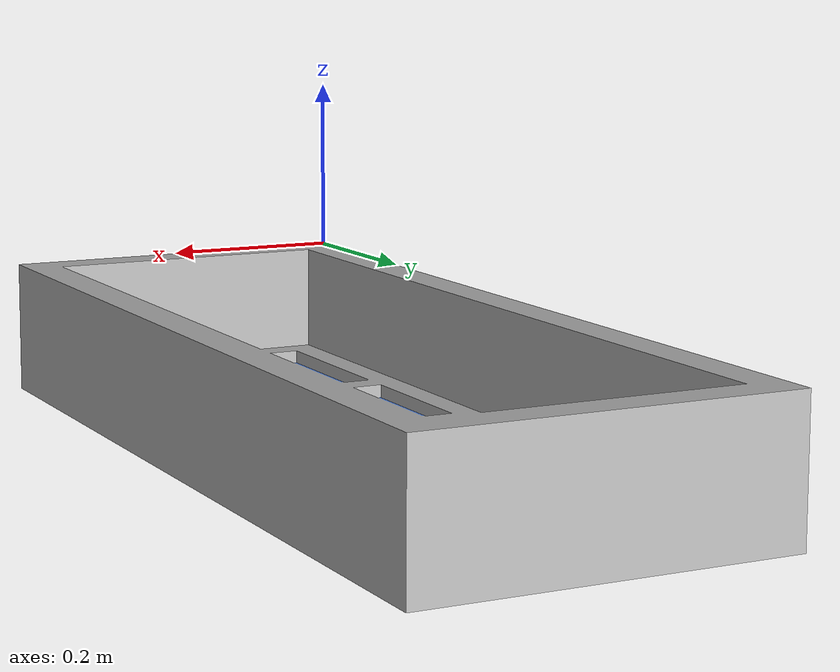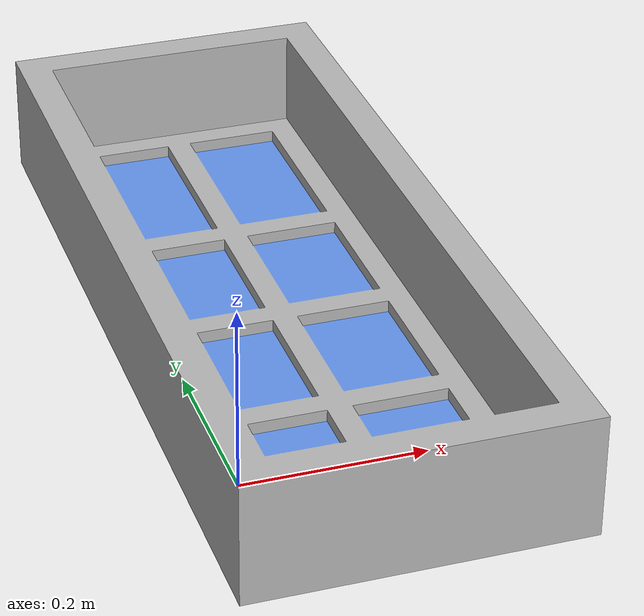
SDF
<?xml version="1.0" ?>
<sdf version="1.6">
  <model name="Window-Glass-Wood">
  <static>true</static>
    <link name="link">
	 <collision name="collision">
		<geometry>
		  <mesh>
		    <uri>model://Window-Glass-Wood/meshes/model.dae</uri>
		  </mesh>
		</geometry>
	      </collision>
	 <visual name="textures">
	   <geometry>
	     <mesh>
	       <uri>model://Window-Glass-Wood/meshes/model.dae</uri>
	     </mesh>
	   </geometry>
	   <material>
	       <uri>model://Window-Glass-Wood/materials/textures</uri>
	   </material>
	 </visual>
    </link>
  </model>
</sdf>
